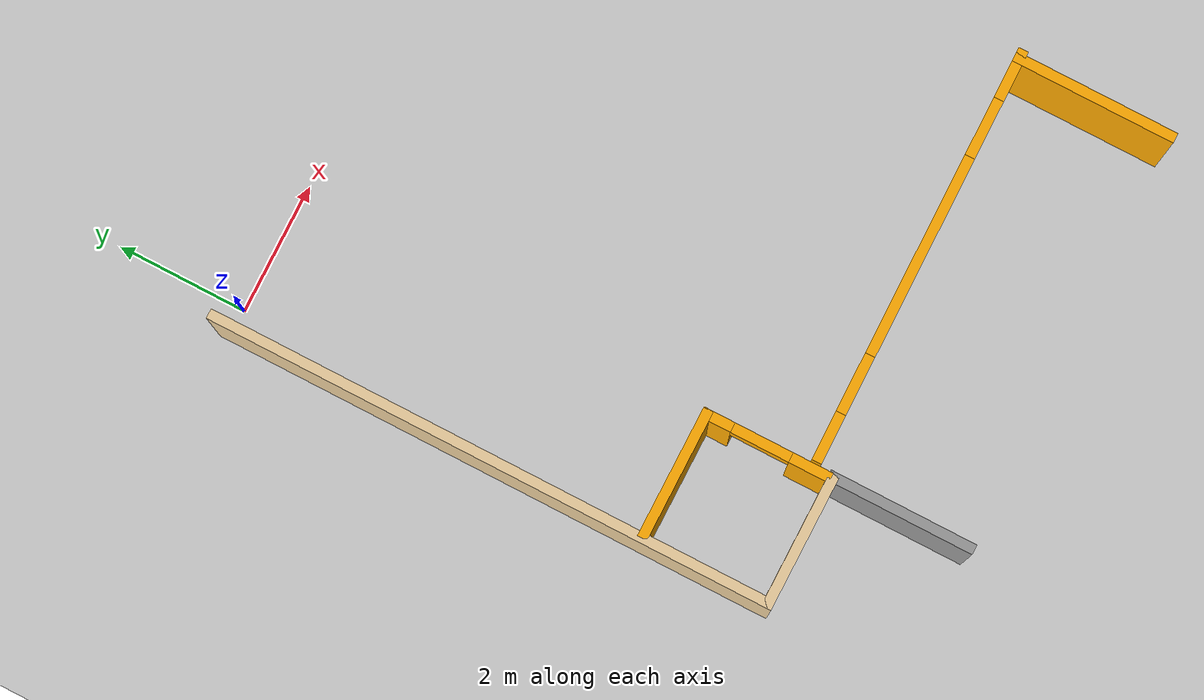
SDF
<sdf version="1.6">
 <world name="default">
  <model name="ground_plane">
   <static>1</static>
   <link name="link">
    <collision name="collision">
     <geometry><plane><normal>0 0 1</normal><size>100 100</size></plane></geometry>
     <surface><friction><ode><mu>100</mu><mu2>50</mu2></ode></friction></surface>
    </collision>
    <visual name="visual">
     <cast_shadows>0</cast_shadows>
     <geometry><plane><normal>0 0 1</normal><size>100 100</size></plane></geometry>
     <material>
      <script><uri>file://media/materials/scripts/gazebo.material</uri><name>Gazebo/Grey</name></script>
     </material>
    </visual>
   </link>
  </model>
  <model name="model">
   <link name="Wall_2">
    <pose>-9.16153 -0.625 0 0 0 -1.5708</pose>
    <visual name="Wall_2_Visual">
     <pose>0 0 1.25 0 -0 0</pose>
     <geometry><box><size>8.75 0.15 2.5</size></box></geometry>
     <material>
      <script><uri>file://media/materials/scripts/gazebo.material</uri><name>Gazebo/Grey</name></script>
      <ambient>0.921569 0.807843 0.615686 1</ambient>
      <shader type="pixel"/>
      <diffuse>0.7 0.7 0.7 1</diffuse>
      <specular>0.01 0.01 0.01 1</specular>
      <emissive>0 0 0 1</emissive>
     </material>
     <meta><layer>0</layer></meta>
    </visual>
    <collision name="Wall_2_Collision">
     <pose>0 0 1.25 0 -0 0</pose>
     <geometry><box><size>8.75 0.15 2.5</size></box></geometry>
     <surface>
      <friction>
       <ode><mu>1</mu><mu2>1</mu2><fdir1>0 0 0</fdir1><slip1>0</slip1><slip2>0</slip2></ode>
       <torsional>
        <coefficient>1</coefficient>
        <patch_radius>0</patch_radius>
        <surface_radius>0</surface_radius>
        <use_patch_radius>1</use_patch_radius>
        <ode><slip>0</slip></ode>
       </torsional>
      </friction>
      <bounce><restitution_coefficient>0</restitution_coefficient><threshold>1e+06</threshold></bounce>
      <contact>
       <collide_without_contact>0</collide_without_contact>
       <collide_without_contact_bitmask>1</collide_without_contact_bitmask>
       <collide_bitmask>1</collide_bitmask>
       <ode>
        <soft_cfm>0</soft_cfm>
        <soft_erp>0.2</soft_erp>
        <kp>1e+13</kp>
        <kd>1</kd>
        <max_vel>0.01</max_vel>
        <min_depth>0</min_depth>
       </ode>
       <bullet>
        <split_impulse>1</split_impulse>
        <split_impulse_penetration_threshold>-0.01</split_impulse_penetration_threshold>
        <soft_cfm>0</soft_cfm>
        <soft_erp>0.2</soft_erp>
        <kp>1e+13</kp>
        <kd>1</kd>
       </bullet>
      </contact>
     </surface>
    </collision>
   </link>
   <link name="Wall_21">
    <pose>-8.16577 -2.97616 0 0 -0 0</pose>
    <visual name="Wall_21_Visual">
     <pose>0 0 1.25 0 -0 0</pose>
     <geometry><box><size>2 0.15 2.5</size></box></geometry>
     <material>
      <script><uri>file://media/materials/scripts/gazebo.material</uri><name>Gazebo/Grey</name></script>
      <ambient>1 0.666667 0 1</ambient>
      <shader type="pixel"/>
      <diffuse>0.7 0.7 0.7 1</diffuse>
      <specular>0.01 0.01 0.01 1</specular>
      <emissive>0 0 0 1</emissive>
     </material>
     <meta><layer>0</layer></meta>
    </visual>
    <collision name="Wall_21_Collision">
     <pose>0 0 1.25 0 -0 0</pose>
     <geometry><box><size>2 0.15 2.5</size></box></geometry>
     <surface>
      <friction>
       <ode><mu>1</mu><mu2>1</mu2><fdir1>0 0 0</fdir1><slip1>0</slip1><slip2>0</slip2></ode>
       <torsional>
        <coefficient>1</coefficient>
        <patch_radius>0</patch_radius>
        <surface_radius>0</surface_radius>
        <use_patch_radius>1</use_patch_radius>
        <ode><slip>0</slip></ode>
       </torsional>
      </friction>
      <bounce><restitution_coefficient>0</restitution_coefficient><threshold>1e+06</threshold></bounce>
      <contact>
       <collide_without_contact>0</collide_without_contact>
       <collide_without_contact_bitmask>1</collide_without_contact_bitmask>
       <collide_bitmask>1</collide_bitmask>
       <ode>
        <soft_cfm>0</soft_cfm>
        <soft_erp>0.2</soft_erp>
        <kp>1e+13</kp>
        <kd>1</kd>
        <max_vel>0.01</max_vel>
        <min_depth>0</min_depth>
       </ode>
       <bullet>
        <split_impulse>1</split_impulse>
        <split_impulse_penetration_threshold>-0.01</split_impulse_penetration_threshold>
        <soft_cfm>0</soft_cfm>
        <soft_erp>0.2</soft_erp>
        <kp>1e+13</kp>
        <kd>1</kd>
       </bullet>
      </contact>
     </surface>
    </collision>
   </link>
   <link name="Wall_4">
    <pose>-8.18653 -4.925 0 0 -0 0</pose>
    <visual name="Wall_4_Visual">
     <pose>0 0 1.25 0 -0 0</pose>
     <geometry><box><size>2.1 0.15 2.5</size></box></geometry>
     <material>
      <script><uri>file://media/materials/scripts/gazebo.material</uri><name>Gazebo/Grey</name></script>
      <ambient>0.921569 0.807843 0.615686 1</ambient>
      <shader type="pixel"/>
      <diffuse>0.7 0.7 0.7 1</diffuse>
      <specular>0.01 0.01 0.01 1</specular>
      <emissive>0 0 0 1</emissive>
     </material>
     <meta><layer>0</layer></meta>
    </visual>
    <collision name="Wall_4_Collision">
     <pose>0 0 1.25 0 -0 0</pose>
     <geometry><box><size>2.1 0.15 2.5</size></box></geometry>
     <surface>
      <friction>
       <ode><mu>1</mu><mu2>1</mu2><fdir1>0 0 0</fdir1><slip1>0</slip1><slip2>0</slip2></ode>
       <torsional>
        <coefficient>1</coefficient>
        <patch_radius>0</patch_radius>
        <surface_radius>0</surface_radius>
        <use_patch_radius>1</use_patch_radius>
        <ode><slip>0</slip></ode>
       </torsional>
      </friction>
      <bounce><restitution_coefficient>0</restitution_coefficient><threshold>1e+06</threshold></bounce>
      <contact>
       <collide_without_contact>0</collide_without_contact>
       <collide_without_contact_bitmask>1</collide_without_contact_bitmask>
       <collide_bitmask>1</collide_bitmask>
       <ode>
        <soft_cfm>0</soft_cfm>
        <soft_erp>0.2</soft_erp>
        <kp>1e+13</kp>
        <kd>1</kd>
        <max_vel>0.01</max_vel>
        <min_depth>0</min_depth>
       </ode>
       <bullet>
        <split_impulse>1</split_impulse>
        <split_impulse_penetration_threshold>-0.01</split_impulse_penetration_threshold>
        <soft_cfm>0</soft_cfm>
        <soft_erp>0.2</soft_erp>
        <kp>1e+13</kp>
        <kd>1</kd>
       </bullet>
      </contact>
     </surface>
    </collision>
   </link>
   <link name="Wall_70">
    <pose>-7.21153 -5.975 0 0 0 -1.5708</pose>
    <visual name="Wall_70_Visual">
     <pose>0 0 1.25 0 -0 0</pose>
     <geometry><box><size>2.25 0.15 2.5</size></box></geometry>
     <material>
      <script><uri>file://media/materials/scripts/gazebo.material</uri><name>Gazebo/Grey</name></script>
      <ambient>1 1 1 1</ambient>
      <shader type="pixel"/>
      <diffuse>0.7 0.7 0.7 1</diffuse>
      <specular>0.01 0.01 0.01 1</specular>
      <emissive>0 0 0 1</emissive>
     </material>
     <meta><layer>0</layer></meta>
    </visual>
    <collision name="Wall_70_Collision">
     <pose>0 0 1.25 0 -0 0</pose>
     <geometry><box><size>2.25 0.15 2.5</size></box></geometry>
     <surface>
      <friction>
       <ode><mu>1</mu><mu2>1</mu2><fdir1>0 0 0</fdir1><slip1>0</slip1><slip2>0</slip2></ode>
       <torsional>
        <coefficient>1</coefficient>
        <patch_radius>0</patch_radius>
        <surface_radius>0</surface_radius>
        <use_patch_radius>1</use_patch_radius>
        <ode><slip>0</slip></ode>
       </torsional>
      </friction>
      <bounce><restitution_coefficient>0</restitution_coefficient><threshold>1e+06</threshold></bounce>
      <contact>
       <collide_without_contact>0</collide_without_contact>
       <collide_without_contact_bitmask>1</collide_without_contact_bitmask>
       <collide_bitmask>1</collide_bitmask>
       <ode>
        <soft_cfm>0</soft_cfm>
        <soft_erp>0.2</soft_erp>
        <kp>1e+13</kp>
        <kd>1</kd>
        <max_vel>0.01</max_vel>
        <min_depth>0</min_depth>
       </ode>
       <bullet>
        <split_impulse>1</split_impulse>
        <split_impulse_penetration_threshold>-0.01</split_impulse_penetration_threshold>
        <soft_cfm>0</soft_cfm>
        <soft_erp>0.2</soft_erp>
        <kp>1e+13</kp>
        <kd>1</kd>
       </bullet>
      </contact>
     </surface>
    </collision>
   </link>
   <link name="Wall_78">
    <pose>-7.24077 -3.90116 0 0 0 -1.5708</pose>
    <visual name="Wall_78_Visual_0">
     <pose>-0.758889 0 1.25 0 -0 0</pose>
     <geometry><box><size>0.482223 0.15 2.5</size></box></geometry>
     <material>
      <script><uri>file://media/materials/scripts/gazebo.material</uri><name>Gazebo/Grey</name></script>
      <ambient>1 0.666667 0 1</ambient>
      <shader type="pixel"/>
      <diffuse>0.7 0.7 0.7 1</diffuse>
      <specular>0.01 0.01 0.01 1</specular>
      <emissive>0 0 0 1</emissive>
     </material>
     <meta><layer>0</layer></meta>
    </visual>
    <visual name="Wall_78_Visual_1">
     <pose>0.691111 0 1.25 0 -0 0</pose>
     <geometry><box><size>0.617777 0.15 2.5</size></box></geometry>
     <material>
      <script><uri>file://media/materials/scripts/gazebo.material</uri><name>Gazebo/Grey</name></script>
      <ambient>1 0.666667 0 1</ambient>
      <shader type="pixel"/>
      <diffuse>0.7 0.7 0.7 1</diffuse>
      <specular>0.01 0.01 0.01 1</specular>
      <emissive>0 0 0 1</emissive>
     </material>
     <meta><layer>0</layer></meta>
    </visual>
    <visual name="Wall_78_Visual_2">
     <pose>-0.067777 0 2.25 0 -0 0</pose>
     <geometry><box><size>0.9 0.15 0.5</size></box></geometry>
     <material>
      <script><uri>file://media/materials/scripts/gazebo.material</uri><name>Gazebo/Grey</name></script>
      <ambient>1 0.666667 0 1</ambient>
      <shader type="pixel"/>
      <diffuse>0.7 0.7 0.7 1</diffuse>
      <specular>0.01 0.01 0.01 1</specular>
      <emissive>0 0 0 1</emissive>
     </material>
     <meta><layer>0</layer></meta>
    </visual>
    <collision name="Wall_78_Collision_2">
     <pose>-0.067777 0 2.25 0 -0 0</pose>
     <geometry><box><size>0.9 0.15 0.5</size></box></geometry>
     <surface>
      <friction>
       <ode><mu>1</mu><mu2>1</mu2><fdir1>0 0 0</fdir1><slip1>0</slip1><slip2>0</slip2></ode>
       <torsional>
        <coefficient>1</coefficient>
        <patch_radius>0</patch_radius>
        <surface_radius>0</surface_radius>
        <use_patch_radius>1</use_patch_radius>
        <ode><slip>0</slip></ode>
       </torsional>
      </friction>
      <bounce><restitution_coefficient>0</restitution_coefficient><threshold>1e+06</threshold></bounce>
      <contact>
       <collide_without_contact>0</collide_without_contact>
       <collide_without_contact_bitmask>1</collide_without_contact_bitmask>
       <collide_bitmask>1</collide_bitmask>
       <ode>
        <soft_cfm>0</soft_cfm>
        <soft_erp>0.2</soft_erp>
        <kp>1e+13</kp>
        <kd>1</kd>
        <max_vel>0.01</max_vel>
        <min_depth>0</min_depth>
       </ode>
       <bullet>
        <split_impulse>1</split_impulse>
        <split_impulse_penetration_threshold>-0.01</split_impulse_penetration_threshold>
        <soft_cfm>0</soft_cfm>
        <soft_erp>0.2</soft_erp>
        <kp>1e+13</kp>
        <kd>1</kd>
       </bullet>
      </contact>
     </surface>
    </collision>
    <collision name="Wall_78_Collision_0">
     <pose>-0.758889 0 1.25 0 -0 0</pose>
     <geometry><box><size>0.482223 0.15 2.5</size></box></geometry>
     <surface>
      <friction>
       <ode><mu>1</mu><mu2>1</mu2><fdir1>0 0 0</fdir1><slip1>0</slip1><slip2>0</slip2></ode>
       <torsional>
        <coefficient>1</coefficient>
        <patch_radius>0</patch_radius>
        <surface_radius>0</surface_radius>
        <use_patch_radius>1</use_patch_radius>
        <ode><slip>0</slip></ode>
       </torsional>
      </friction>
      <bounce><restitution_coefficient>0</restitution_coefficient><threshold>1e+06</threshold></bounce>
      <contact>
       <collide_without_contact>0</collide_without_contact>
       <collide_without_contact_bitmask>1</collide_without_contact_bitmask>
       <collide_bitmask>1</collide_bitmask>
       <ode>
        <soft_cfm>0</soft_cfm>
        <soft_erp>0.2</soft_erp>
        <kp>1e+13</kp>
        <kd>1</kd>
        <max_vel>0.01</max_vel>
        <min_depth>0</min_depth>
       </ode>
       <bullet>
        <split_impulse>1</split_impulse>
        <split_impulse_penetration_threshold>-0.01</split_impulse_penetration_threshold>
        <soft_cfm>0</soft_cfm>
        <soft_erp>0.2</soft_erp>
        <kp>1e+13</kp>
        <kd>1</kd>
       </bullet>
      </contact>
     </surface>
    </collision>
    <collision name="Wall_78_Collision_1">
     <pose>0.691111 0 1.25 0 -0 0</pose>
     <geometry><box><size>0.617777 0.15 2.5</size></box></geometry>
     <surface>
      <friction>
       <ode><mu>1</mu><mu2>1</mu2><fdir1>0 0 0</fdir1><slip1>0</slip1><slip2>0</slip2></ode>
       <torsional>
        <coefficient>1</coefficient>
        <patch_radius>0</patch_radius>
        <surface_radius>0</surface_radius>
        <use_patch_radius>1</use_patch_radius>
        <ode><slip>0</slip></ode>
       </torsional>
      </friction>
      <bounce><restitution_coefficient>0</restitution_coefficient><threshold>1e+06</threshold></bounce>
      <contact>
       <collide_without_contact>0</collide_without_contact>
       <collide_without_contact_bitmask>1</collide_without_contact_bitmask>
       <collide_bitmask>1</collide_bitmask>
       <ode>
        <soft_cfm>0</soft_cfm>
        <soft_erp>0.2</soft_erp>
        <kp>1e+13</kp>
        <kd>1</kd>
        <max_vel>0.01</max_vel>
        <min_depth>0</min_depth>
       </ode>
       <bullet>
        <split_impulse>1</split_impulse>
        <split_impulse_penetration_threshold>-0.01</split_impulse_penetration_threshold>
        <soft_cfm>0</soft_cfm>
        <soft_erp>0.2</soft_erp>
        <kp>1e+13</kp>
        <kd>1</kd>
       </bullet>
      </contact>
     </surface>
    </collision>
   </link>
   <link name="Wall_82">
    <pose>-0.861905 -5.73478 0 0 -0 1.5708</pose>
    <visual name="Wall_82_Visual">
     <pose>0 0 1.25 0 -0 0</pose>
     <geometry><box><size>2.5 0.15 2.5</size></box></geometry>
     <material>
      <script><uri>file://media/materials/scripts/gazebo.material</uri><name>Gazebo/Grey</name></script>
      <ambient>1 0.666667 0 1</ambient>
      <shader type="pixel"/>
      <diffuse>0.7 0.7 0.7 1</diffuse>
      <specular>0.01 0.01 0.01 1</specular>
      <emissive>0 0 0 1</emissive>
     </material>
     <meta><layer>0</layer></meta>
    </visual>
    <collision name="Wall_82_Collision">
     <pose>0 0 1.25 0 -0 0</pose>
     <geometry><box><size>2.5 0.15 2.5</size></box></geometry>
     <surface>
      <friction>
       <ode><mu>1</mu><mu2>1</mu2><fdir1>0 0 0</fdir1><slip1>0</slip1><slip2>0</slip2></ode>
       <torsional>
        <coefficient>1</coefficient>
        <patch_radius>0</patch_radius>
        <surface_radius>0</surface_radius>
        <use_patch_radius>1</use_patch_radius>
        <ode><slip>0</slip></ode>
       </torsional>
      </friction>
      <bounce><restitution_coefficient>0</restitution_coefficient><threshold>1e+06</threshold></bounce>
      <contact>
       <collide_without_contact>0</collide_without_contact>
       <collide_without_contact_bitmask>1</collide_without_contact_bitmask>
       <collide_bitmask>1</collide_bitmask>
       <ode>
        <soft_cfm>0</soft_cfm>
        <soft_erp>0.2</soft_erp>
        <kp>1e+13</kp>
        <kd>1</kd>
        <max_vel>0.01</max_vel>
        <min_depth>0</min_depth>
       </ode>
       <bullet>
        <split_impulse>1</split_impulse>
        <split_impulse_penetration_threshold>-0.01</split_impulse_penetration_threshold>
        <soft_cfm>0</soft_cfm>
        <soft_erp>0.2</soft_erp>
        <kp>1e+13</kp>
        <kd>1</kd>
       </bullet>
      </contact>
     </surface>
    </collision>
   </link>
   <link name="Wall_85">
    <pose>-3.92906 -4.59054 0 0 0 -3.13176</pose>
    <visual name="Wall_85_Visual_0">
     <pose>-2.81601 0 1.25 0 -0 0</pose>
     <geometry><box><size>0.775638 0.15 2.5</size></box></geometry>
     <material>
      <script><uri>file://media/materials/scripts/gazebo.material</uri><name>Gazebo/Grey</name></script>
      <ambient>1 0.666667 0 1</ambient>
      <shader type="pixel"/>
      <diffuse>0.7 0.7 0.7 1</diffuse>
      <specular>0.01 0.01 0.01 1</specular>
      <emissive>0 0 0 1</emissive>
     </material>
     <meta><layer>0</layer></meta>
    </visual>
    <visual name="Wall_85_Visual_1">
     <pose>0.013292 0 1.25 0 -0 0</pose>
     <geometry><box><size>3.08297 0.15 2.5</size></box></geometry>
     <material>
      <script><uri>file://media/materials/scripts/gazebo.material</uri><name>Gazebo/Grey</name></script>
      <ambient>1 0.666667 0 1</ambient>
      <shader type="pixel"/>
      <diffuse>0.7 0.7 0.7 1</diffuse>
      <specular>0.01 0.01 0.01 1</specular>
      <emissive>0 0 0 1</emissive>
     </material>
     <meta><layer>0</layer></meta>
    </visual>
    <visual name="Wall_85_Visual_2">
     <pose>2.82931 0 1.25 0 -0 0</pose>
     <geometry><box><size>0.749054 0.15 2.5</size></box></geometry>
     <material>
      <script><uri>file://media/materials/scripts/gazebo.material</uri><name>Gazebo/Grey</name></script>
      <ambient>1 0.666667 0 1</ambient>
      <shader type="pixel"/>
      <diffuse>0.7 0.7 0.7 1</diffuse>
      <specular>0.01 0.01 0.01 1</specular>
      <emissive>0 0 0 1</emissive>
     </material>
     <meta><layer>0</layer></meta>
    </visual>
    <visual name="Wall_85_Visual_3">
     <pose>-1.97819 0 2.25 0 -0 0</pose>
     <geometry><box><size>0.9 0.15 0.5</size></box></geometry>
     <material>
      <script><uri>file://media/materials/scripts/gazebo.material</uri><name>Gazebo/Grey</name></script>
      <ambient>1 0.666667 0 1</ambient>
      <shader type="pixel"/>
      <diffuse>0.7 0.7 0.7 1</diffuse>
      <specular>0.01 0.01 0.01 1</specular>
      <emissive>0 0 0 1</emissive>
     </material>
     <meta><layer>0</layer></meta>
    </visual>
    <visual name="Wall_85_Visual_4">
     <pose>2.00478 0 2.25 0 -0 0</pose>
     <geometry><box><size>0.9 0.15 0.5</size></box></geometry>
     <material>
      <script><uri>file://media/materials/scripts/gazebo.material</uri><name>Gazebo/Grey</name></script>
      <ambient>1 0.666667 0 1</ambient>
      <shader type="pixel"/>
      <diffuse>0.7 0.7 0.7 1</diffuse>
      <specular>0.01 0.01 0.01 1</specular>
      <emissive>0 0 0 1</emissive>
     </material>
     <meta><layer>0</layer></meta>
    </visual>
    <collision name="Wall_85_Collision_0">
     <pose>-2.81601 0 1.25 0 -0 0</pose>
     <geometry><box><size>0.775638 0.15 2.5</size></box></geometry>
     <surface>
      <friction>
       <ode><mu>1</mu><mu2>1</mu2><fdir1>0 0 0</fdir1><slip1>0</slip1><slip2>0</slip2></ode>
       <torsional>
        <coefficient>1</coefficient>
        <patch_radius>0</patch_radius>
        <surface_radius>0</surface_radius>
        <use_patch_radius>1</use_patch_radius>
        <ode><slip>0</slip></ode>
       </torsional>
      </friction>
      <bounce><restitution_coefficient>0</restitution_coefficient><threshold>1e+06</threshold></bounce>
      <contact>
       <collide_without_contact>0</collide_without_contact>
       <collide_without_contact_bitmask>1</collide_without_contact_bitmask>
       <collide_bitmask>1</collide_bitmask>
       <ode>
        <soft_cfm>0</soft_cfm>
        <soft_erp>0.2</soft_erp>
        <kp>1e+13</kp>
        <kd>1</kd>
        <max_vel>0.01</max_vel>
        <min_depth>0</min_depth>
       </ode>
       <bullet>
        <split_impulse>1</split_impulse>
        <split_impulse_penetration_threshold>-0.01</split_impulse_penetration_threshold>
        <soft_cfm>0</soft_cfm>
        <soft_erp>0.2</soft_erp>
        <kp>1e+13</kp>
        <kd>1</kd>
       </bullet>
      </contact>
     </surface>
    </collision>
    <collision name="Wall_85_Collision_1">
     <pose>0.013292 0 1.25 0 -0 0</pose>
     <geometry><box><size>3.08297 0.15 2.5</size></box></geometry>
     <surface>
      <friction>
       <ode><mu>1</mu><mu2>1</mu2><fdir1>0 0 0</fdir1><slip1>0</slip1><slip2>0</slip2></ode>
       <torsional>
        <coefficient>1</coefficient>
        <patch_radius>0</patch_radius>
        <surface_radius>0</surface_radius>
        <use_patch_radius>1</use_patch_radius>
        <ode><slip>0</slip></ode>
       </torsional>
      </friction>
      <bounce><restitution_coefficient>0</restitution_coefficient><threshold>1e+06</threshold></bounce>
      <contact>
       <collide_without_contact>0</collide_without_contact>
       <collide_without_contact_bitmask>1</collide_without_contact_bitmask>
       <collide_bitmask>1</collide_bitmask>
       <ode>
        <soft_cfm>0</soft_cfm>
        <soft_erp>0.2</soft_erp>
        <kp>1e+13</kp>
        <kd>1</kd>
        <max_vel>0.01</max_vel>
        <min_depth>0</min_depth>
       </ode>
       <bullet>
        <split_impulse>1</split_impulse>
        <split_impulse_penetration_threshold>-0.01</split_impulse_penetration_threshold>
        <soft_cfm>0</soft_cfm>
        <soft_erp>0.2</soft_erp>
        <kp>1e+13</kp>
        <kd>1</kd>
       </bullet>
      </contact>
     </surface>
    </collision>
    <collision name="Wall_85_Collision_2">
     <pose>2.82931 0 1.25 0 -0 0</pose>
     <geometry><box><size>0.749054 0.15 2.5</size></box></geometry>
     <surface>
      <friction>
       <ode><mu>1</mu><mu2>1</mu2><fdir1>0 0 0</fdir1><slip1>0</slip1><slip2>0</slip2></ode>
       <torsional>
        <coefficient>1</coefficient>
        <patch_radius>0</patch_radius>
        <surface_radius>0</surface_radius>
        <use_patch_radius>1</use_patch_radius>
        <ode><slip>0</slip></ode>
       </torsional>
      </friction>
      <bounce><restitution_coefficient>0</restitution_coefficient><threshold>1e+06</threshold></bounce>
      <contact>
       <collide_without_contact>0</collide_without_contact>
       <collide_without_contact_bitmask>1</collide_without_contact_bitmask>
       <collide_bitmask>1</collide_bitmask>
       <ode>
        <soft_cfm>0</soft_cfm>
        <soft_erp>0.2</soft_erp>
        <kp>1e+13</kp>
        <kd>1</kd>
        <max_vel>0.01</max_vel>
        <min_depth>0</min_depth>
       </ode>
       <bullet>
        <split_impulse>1</split_impulse>
        <split_impulse_penetration_threshold>-0.01</split_impulse_penetration_threshold>
        <soft_cfm>0</soft_cfm>
        <soft_erp>0.2</soft_erp>
        <kp>1e+13</kp>
        <kd>1</kd>
       </bullet>
      </contact>
     </surface>
    </collision>
    <collision name="Wall_85_Collision_3">
     <pose>-1.97819 0 2.25 0 -0 0</pose>
     <geometry><box><size>0.9 0.15 0.5</size></box></geometry>
     <surface>
      <friction>
       <ode><mu>1</mu><mu2>1</mu2><fdir1>0 0 0</fdir1><slip1>0</slip1><slip2>0</slip2></ode>
       <torsional>
        <coefficient>1</coefficient>
        <patch_radius>0</patch_radius>
        <surface_radius>0</surface_radius>
        <use_patch_radius>1</use_patch_radius>
        <ode><slip>0</slip></ode>
       </torsional>
      </friction>
      <bounce><restitution_coefficient>0</restitution_coefficient><threshold>1e+06</threshold></bounce>
      <contact>
       <collide_without_contact>0</collide_without_contact>
       <collide_without_contact_bitmask>1</collide_without_contact_bitmask>
       <collide_bitmask>1</collide_bitmask>
       <ode>
        <soft_cfm>0</soft_cfm>
        <soft_erp>0.2</soft_erp>
        <kp>1e+13</kp>
        <kd>1</kd>
        <max_vel>0.01</max_vel>
        <min_depth>0</min_depth>
       </ode>
       <bullet>
        <split_impulse>1</split_impulse>
        <split_impulse_penetration_threshold>-0.01</split_impulse_penetration_threshold>
        <soft_cfm>0</soft_cfm>
        <soft_erp>0.2</soft_erp>
        <kp>1e+13</kp>
        <kd>1</kd>
       </bullet>
      </contact>
     </surface>
    </collision>
    <collision name="Wall_85_Collision_4">
     <pose>2.00478 0 2.25 0 -0 0</pose>
     <geometry><box><size>0.9 0.15 0.5</size></box></geometry>
     <surface>
      <friction>
       <ode><mu>1</mu><mu2>1</mu2><fdir1>0 0 0</fdir1><slip1>0</slip1><slip2>0</slip2></ode>
       <torsional>
        <coefficient>1</coefficient>
        <patch_radius>0</patch_radius>
        <surface_radius>0</surface_radius>
        <use_patch_radius>1</use_patch_radius>
        <ode><slip>0</slip></ode>
       </torsional>
      </friction>
      <bounce><restitution_coefficient>0</restitution_coefficient><threshold>1e+06</threshold></bounce>
      <contact>
       <collide_without_contact>0</collide_without_contact>
       <collide_without_contact_bitmask>1</collide_without_contact_bitmask>
       <collide_bitmask>1</collide_bitmask>
       <ode>
        <soft_cfm>0</soft_cfm>
        <soft_erp>0.2</soft_erp>
        <kp>1e+13</kp>
        <kd>1</kd>
        <max_vel>0.01</max_vel>
        <min_depth>0</min_depth>
       </ode>
       <bullet>
        <split_impulse>1</split_impulse>
        <split_impulse_penetration_threshold>-0.01</split_impulse_penetration_threshold>
        <soft_cfm>0</soft_cfm>
        <soft_erp>0.2</soft_erp>
        <kp>1e+13</kp>
        <kd>1</kd>
       </bullet>
      </contact>
     </surface>
    </collision>
   </link>
   <static>1</static>
   <pose>8.76473 -3.61191 0 0 -0 0</pose>
  </model>
 </world>
</sdf>
